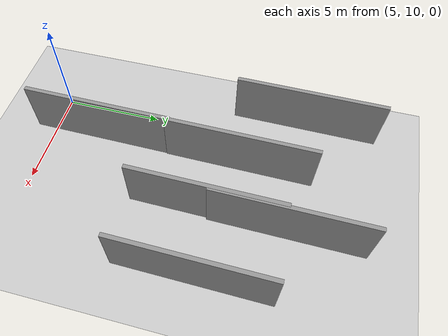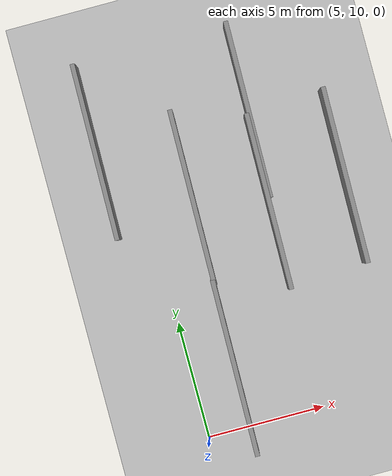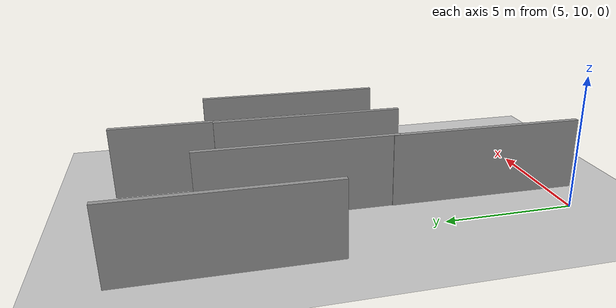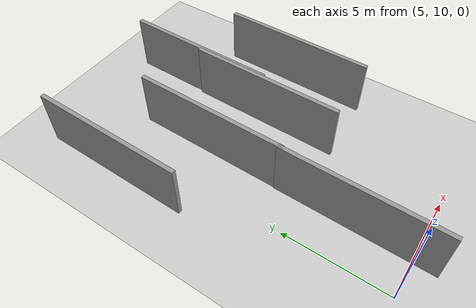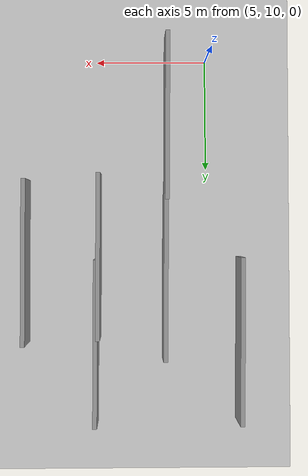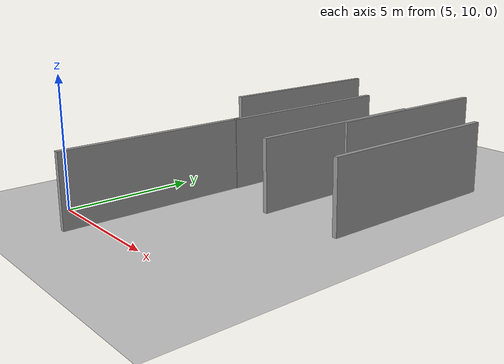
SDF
<sdf version="1.7">
 <world name="default">
  <model name="ground_plane">
   <static>1</static>
   <link name="link">
    <collision name="collision">
     <geometry><plane><normal>0 0 1</normal><size>100 100</size></plane></geometry>
     <surface><friction><ode><mu>100</mu><mu2>50</mu2></ode></friction></surface>
    </collision>
    <visual name="visual">
     <cast_shadows>0</cast_shadows>
     <geometry><plane><normal>0 0 1</normal><size>100 100</size></plane></geometry>
     <material>
      <script><uri>file://media/materials/scripts/gazebo.material</uri><name>Gazebo/Grey</name></script>
     </material>
    </visual>
   </link>
  </model>
  <model name="grey_wall_2_clone_4_clone_1">
   <static>1</static>
   <link name="link">
    <pose>0 0 1.4 0 -0 0</pose>
    <collision name="collision"><geometry><box><size>7.5 0.2 2.8</size></box></geometry></collision>
    <visual name="visual">
     <cast_shadows>0</cast_shadows>
     <geometry><box><size>7.5 0.2 2.8</size></box></geometry>
     <material>
      <script>
       <uri>model://grey_wall/materials/scripts</uri>
       <uri>model://grey_wall/materials/textures</uri>
       <name>vrc/grey_wall</name>
      </script>
     </material>
    </visual>
   </link>
   <pose>13.2994 19.1908 0 0 -0 1.5595</pose>
  </model>
  <model name="grey_wall_2_clone_4_clone_clone_1">
   <static>1</static>
   <link name="link">
    <pose>0 0 1.4 0 -0 0</pose>
    <collision name="collision"><geometry><box><size>7.5 0.2 2.8</size></box></geometry></collision>
    <visual name="visual">
     <cast_shadows>0</cast_shadows>
     <geometry><box><size>7.5 0.2 2.8</size></box></geometry>
     <material>
      <script>
       <uri>model://grey_wall/materials/scripts</uri>
       <uri>model://grey_wall/materials/textures</uri>
       <name>vrc/grey_wall</name>
      </script>
     </material>
    </visual>
   </link>
   <pose>9.97165 18.9581 0 0 -0 1.5595</pose>
  </model>
  <model name="grey_wall_2_clone_4_clone_clone_3">
   <static>1</static>
   <link name="link">
    <pose>0 0 1.4 0 -0 0</pose>
    <collision name="collision"><geometry><box><size>7.5 0.2 2.8</size></box></geometry></collision>
    <visual name="visual">
     <cast_shadows>0</cast_shadows>
     <geometry><box><size>7.5 0.2 2.8</size></box></geometry>
     <material>
      <script>
       <uri>model://grey_wall/materials/scripts</uri>
       <uri>model://grey_wall/materials/textures</uri>
       <name>vrc/grey_wall</name>
      </script>
     </material>
    </visual>
   </link>
   <pose>6.82948 12.6733 0 0 -0 1.5595</pose>
  </model>
  <model name="grey_wall_2_clone_4_clone_clone_6">
   <static>1</static>
   <link name="link">
    <pose>0 0 1.4 0 -0 0</pose>
    <collision name="collision"><geometry><box><size>7.5 0.2 2.8</size></box></geometry></collision>
    <visual name="visual">
     <cast_shadows>0</cast_shadows>
     <geometry><box><size>7.5 0.2 2.8</size></box></geometry>
     <material>
      <script>
       <uri>model://grey_wall/materials/scripts</uri>
       <uri>model://grey_wall/materials/textures</uri>
       <name>vrc/grey_wall</name>
      </script>
     </material>
    </visual>
   </link>
   <pose>3.55634 22.7818 0 0 -0 1.5595</pose>
  </model>
  <model name="grey_wall_2_clone_4_clone_2_clone_1">
   <static>1</static>
   <link name="link">
    <pose>0 0 1.4 0 -0 0</pose>
    <collision name="collision"><geometry><box><size>7.5 0.2 2.8</size></box></geometry></collision>
    <visual name="visual">
     <cast_shadows>0</cast_shadows>
     <geometry><box><size>7.5 0.2 2.8</size></box></geometry>
     <material>
      <script>
       <uri>model://grey_wall/materials/scripts</uri>
       <uri>model://grey_wall/materials/textures</uri>
       <name>vrc/grey_wall</name>
      </script>
     </material>
    </visual>
   </link>
   <pose>6.94763 19.9168 0 0 -0 1.5595</pose>
  </model>
  <model name="grey_wall_2_clone_4_clone_2_clone_7">
   <static>1</static>
   <link name="link">
    <pose>0 0 1.4 0 -0 0</pose>
    <collision name="collision"><geometry><box><size>7.5 0.2 2.8</size></box></geometry></collision>
    <visual name="visual">
     <cast_shadows>0</cast_shadows>
     <geometry><box><size>7.5 0.2 2.8</size></box></geometry>
     <material>
      <script>
       <uri>model://grey_wall/materials/scripts</uri>
       <uri>model://grey_wall/materials/textures</uri>
       <name>vrc/grey_wall</name>
      </script>
     </material>
    </visual>
   </link>
   <pose>10.1194 22.8425 0 0 -0 1.5595</pose>
  </model>
 </world>
</sdf>
